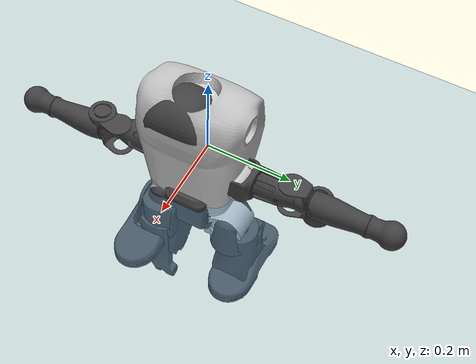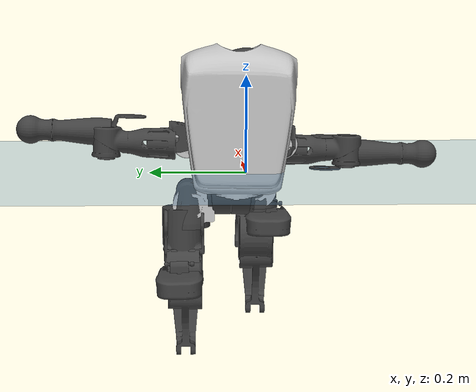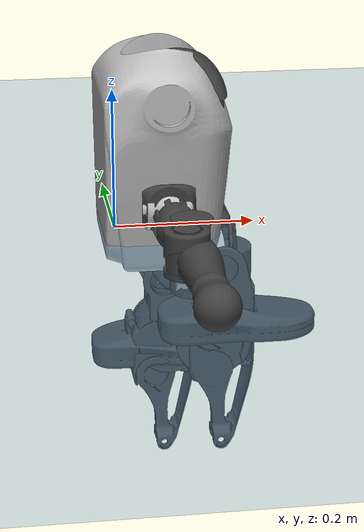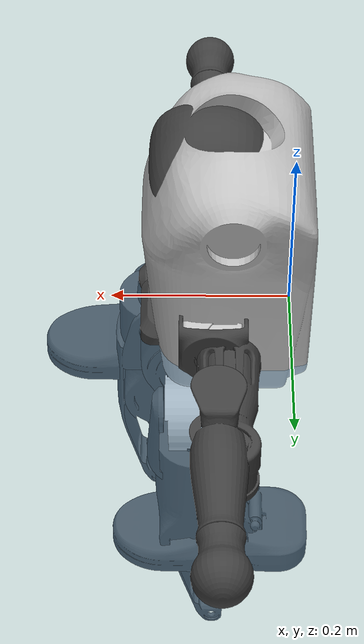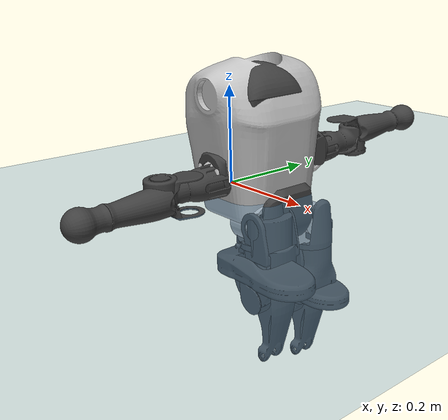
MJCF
<mujoco model="T1">
  <compiler angle="radian" assetdir="assets" balanceinertia="true" inertiafromgeom="false"/>

  <option timestep="0.005" density="1.2" viscosity="2e-05"/>

  <size nkey="1"/>

  <visual>
    <quality shadowsize="8192"/>
    <map shadowclip="0.5"/>
  </visual>

  <default>
    <default class="/">
      <joint armature="0.01" damping="0.01" frictionloss="0.1"/>
      <geom contype="0" conaffinity="0" group="1" solref="-1000 -80"/>
      <site size="0.01 0.005 0.005" group="5"/>
      <general forcelimited="true" biastype="affine" gainprm="25" biasprm="0 -25 -0.6"/>
      <default class="t1">
        <geom rgba="0.25 0.25 0.25 1"/>
        <default class="visual">
          <geom type="mesh" group="2"/>
        </default>
        <default class="collision">
          <geom group="3"/>
        </default>
        <default class="foot">
          <geom size="0.1115 0.05 0.015" type="box" condim="6" group="4" priority="1" solimp="0.015 1 0.015"/>
        </default>
        <default class="reward_collision_sphere">
          <geom group="5" rgba="1 0 0 1"/>
        </default>
      </default>
    </default>
  </default>

  <asset>
    <texture type="skybox" colorspace="auto" name="//unnamed_texture_0" builtin="gradient" rgb1="0.95 0.95 0.95" rgb2="0.95 0.95 0.95" width="100" height="600"/>
    <texture type="2d" colorspace="auto" name="texplane" builtin="checker" rgb1="0.345 0.575 0.748" rgb2="0.345 0.575 0.748" markrgb="1 1 1" width="512" height="512"/>
    <material name="MatPlane" class="/" texture="texplane" texuniform="true" texrepeat="2 2" specular="0.9"/>
    <mesh name="Trunk" class="/" file="Trunk.stl"/>
    <mesh name="H1" class="/" file="H1.stl"/>
    <mesh name="H2" class="/" file="H2.stl"/>
    <mesh name="AL1" class="/" file="AL1.stl"/>
    <mesh name="AL2" class="/" file="AL2.stl"/>
    <mesh name="AL3" class="/" file="AL3.stl"/>
    <mesh name="left_hand_link" class="/" file="left_hand_link.stl"/>
    <mesh name="AR1" class="/" file="AR1.stl"/>
    <mesh name="AR2" class="/" file="AR2.stl"/>
    <mesh name="AR3" class="/" file="AR3.stl"/>
    <mesh name="right_hand_link" class="/" file="right_hand_link.stl"/>
    <mesh name="Waist" class="/" file="Waist.stl"/>
    <mesh name="Hip_Pitch_Left" class="/" file="Hip_Pitch_Left.stl"/>
    <mesh name="Hip_Roll_Left" class="/" file="Hip_Roll_Left.stl"/>
    <mesh name="Hip_Yaw_Left" class="/" file="Hip_Yaw_Left.stl"/>
    <mesh name="Shank_Left" class="/" file="Shank_Left.stl"/>
    <mesh name="Ankle_Cross_Left" class="/" file="Ankle_Cross_Left.stl"/>
    <mesh name="left_foot_link" class="/" file="left_foot_link.stl"/>
    <mesh name="Hip_Pitch_Right" class="/" file="Hip_Pitch_Right.stl"/>
    <mesh name="Hip_Roll_Right" class="/" file="Hip_Roll_Right.stl"/>
    <mesh name="Hip_Yaw_Right" class="/" file="Hip_Yaw_Right.stl"/>
    <mesh name="Shank_Right" class="/" file="Shank_Right.stl"/>
    <mesh name="Ankle_Cross_Right" class="/" file="Ankle_Cross_Right.stl"/>
    <mesh name="right_foot_link" class="/" file="right_foot_link.stl"/>
  </asset>

  <worldbody>
    <geom name="floor" class="/" size="100 100 0.125" type="plane" group="0" material="MatPlane"/>
    <light name="toplight_shadow" class="/" pos="0 0 5" dir="0.0990148 0.0990148 -0.990148" type="directional" ambient="0.04 0.04 0.04" diffuse="0.55 0.55 0.55" specular="0.12 0.12 0.12"/>
    <light name="toplight_fill" class="/" pos="0 0 5" dir="0.0990148 0.0990148 -0.990148" type="directional" castshadow="false" ambient="0.04 0.04 0.04" diffuse="0.3 0.3 0.3" specular="0.08 0.08 0.08"/>
    <body name="trunk" childclass="t1" pos="0.0106367 0.016613 -0.0149039" quat="0.999964 0.00834739 -0.000775371 -0.00154818">
      <inertial pos="0.0697083 -0.00964631 0.017567" quat="0.999771 -0.00479746 -0.0185938 0.00939736" mass="3.86346" diaginertia="0.162578 0.0069563 4.33938e-05"/>
      <joint name="//unnamed_joint_0" type="free" armature="0" damping="0" frictionloss="0"/>
      <geom name="//unnamed_geom_1" class="visual" rgba="0.76 0.76 0.76 1" mesh="Trunk"/>
      <geom name="//unnamed_geom_2" class="collision" size="0.0529089 0.0705452 0.105818" pos="0.0731483 0 0.0318669" type="box"/>
      <geom name="//unnamed_geom_3" class="reward_collision_sphere" size="0.0811269" pos="0.0731483 0 0.0265558"/>
      <geom name="//unnamed_geom_4" class="reward_collision_sphere" size="0.0105818" pos="0.0731483 0.053691 0"/>
      <geom name="//unnamed_geom_5" class="reward_collision_sphere" size="0.0105818" pos="0.0731483 -0.053691 0"/>
      <geom name="//unnamed_geom_6" class="reward_collision_sphere" size="0.0105818" pos="0.0731483 0.0675875 0.0478004"/>
      <geom name="//unnamed_geom_7" class="reward_collision_sphere" size="0.0105818" pos="0.0731483 -0.0675875 0.0478004"/>
      <site name="imu" pos="-0.0745283 0.0452247 -0.0439835" size="0.00705452"/>
      <camera name="track" pos="0 -1.26332 0" quat="0.707107 0.707107 0 0" mode="trackcom"/>
      <camera name="ego_camera" pos="0.148735 0 0.111534" quat="-0.5 -0.5 0.5 0.5"/>
      <body name="H1" pos="0.0591387 -0.017187 0.0792847" quat="1 -0.000102605 -0.000426228 -0.000187102">
        <inertial pos="0.0149054 -0.0118514 0.000233693" quat="0.750839 0.0254712 -0.0876569 0.654147" mass="0.19698" diaginertia="0.000690777 2.14503e-05 2.23353e-07"/>
        <joint name="AAHead_yaw" pos="0 0 0" axis="-0.012478 0.037183 0.999231" range="-1.3474 1.88079" armature="0.0132177" damping="0.0379502" frictionloss="0.000874765"/>
        <geom name="//unnamed_geom_8" class="visual" mesh="H1"/>
        <body name="H2" pos="0.0053628 -0.000137132 0.00296648" quat="0.999999 -0.000986577 -0.00102261 0.000153499">
          <inertial pos="0.00104495 0.00424208 0.0283558" quat="0.988405 0.100695 -0.0302441 -0.109553" mass="0.287362" diaginertia="0.00759328 0.000202036 2.13125e-06"/>
          <joint name="Head_pitch" pos="0 0 0" axis="-0.0317648 -0.999408 0.0131959" range="-1.11481 0.235092" armature="0.0142153" damping="0.0206331" frictionloss="0.101755"/>
          <geom name="//unnamed_geom_9" class="visual" mesh="H2"/>
          <geom name="//unnamed_geom_10" class="collision" size="0.0564361" pos="0.0121914 0 0.0292113"/>
          <geom name="//unnamed_geom_11" class="reward_collision_sphere" size="0.0634907" pos="0.0243828 0 0.0265558"/>
        </body>
      </body>
      <body name="AL1" pos="0.0770498 0.059866 0.0665923" quat="0.999998 2.18202e-05 0.00195707 0.000161628">
        <inertial pos="0.0115631 0.0308273 -0.00846315" quat="0.435806 0.533005 -0.478622 0.544885" mass="0.214458" diaginertia="0.0036928 0.000116334 3.23866e-07"/>
        <joint name="Left_Shoulder_Pitch" pos="0 0 0" axis="-0.0148538 0.997894 0.063149" stiffness="0.0222349" range="-3.28737 1.0012" armature="0.00803912" damping="0" frictionloss="0.0954556"/>
        <geom name="//unnamed_geom_12" class="visual" rgba="0.76 0.76 0.76 1" mesh="AL1"/>
        <body name="AL2" pos="-0.00158579 0.0299868 0.0115866" quat="0.999999 4.45752e-05 -0.000589416 -0.00162163">
          <inertial pos="0.00122417 0.0367127 0.00506026" quat="0.484949 0.522364 -0.493313 0.4986" mass="0.0591402" diaginertia="0.00125225 3.48188e-05 2.82384e-07"/>
          <joint name="Left_Shoulder_Roll" pos="0 0 0" axis="-0.999389 0.0250281 0.0243983" stiffness="0.0328284" range="-1.34796 1.47606" armature="0.006573" damping="0.0333404" frictionloss="0.0926862"/>
          <geom name="//unnamed_geom_13" class="visual" mesh="AL2"/>
          <body name="AL3" pos="-0.0159854 0.0413657 -0.0121106" quat="0.999972 0.00576607 -0.00364328 0.00322843">
            <inertial pos="0.0183631 0.0486901 0.00207817" quat="0.707223 0.706073 0.0344458 0.0105015" mass="0.299148" diaginertia="0.0300938 0.00160569 7.81445e-07"/>
            <joint name="Left_Elbow_Pitch" pos="0 0 0" axis="-0.000984632 -0.999624 0.0274145" stiffness="0.0320553" range="-2.20824 2.29872" armature="0.0111475" damping="0.0210837" frictionloss="0.0969847"/>
            <geom name="//unnamed_geom_14" class="visual" mesh="AL3"/>
            <geom name="//unnamed_geom_15" class="collision" size="0.0211636 0.0529089" pos="0 0.0315829 0" quat="0.707105 0.707108 0 0" type="cylinder"/>
            <geom name="//unnamed_geom_16" class="reward_collision_sphere" size="0.0253963"/>
            <body name="left_hand_link" pos="0.0123255 0.0924708 0.0195478" quat="0.999962 0.0030614 -0.00598202 0.00548667">
              <inertial pos="0.0036253 0.0831444 -0.0140241" quat="0.676047 0.735483 -0.00918149 0.0440574" mass="0.155357" diaginertia="0.0214765 0.00105976 4.19474e-07"/>
              <joint name="Left_Elbow_Yaw" pos="0 0 0" axis="-0.0331909 0.00743866 0.999421" range="-2.30248 0.208389" armature="0.00906854" damping="0" frictionloss="0.0827245"/>
              <geom name="//unnamed_geom_17" class="visual" mesh="left_hand_link"/>
              <geom name="//unnamed_geom_18" class="collision" size="0.0211636 0.061727" pos="0 0.0821156 0" quat="0.707105 0.707108 0 0" type="cylinder"/>
              <geom name="//unnamed_geom_19" class="reward_collision_sphere" size="0.0352726"/>
              <geom name="//unnamed_geom_20" class="reward_collision_sphere" size="0.0246908" pos="0 0.0694825 0"/>
              <geom name="//unnamed_geom_21" class="reward_collision_sphere" size="0.0246908" pos="0 0.135807 0"/>
            </body>
          </body>
        </body>
      </body>
      <body name="AR1" pos="0.0574182 -0.0486246 0.0701938" quat="0.999992 0.00306606 0.00242053 -0.00047826">
        <inertial pos="-0.00456494 -0.0120099 -0.0182773" quat="0.48458 0.521548 -0.49324 0.499885" mass="0.218187" diaginertia="0.00413591 0.000184816 4.47601e-07"/>
        <joint name="Right_Shoulder_Pitch" pos="0 0 0" axis="-0.0179685 -0.996066 0.0867784" stiffness="0.0163805" range="-1.53214 3.40995" armature="0.00353121" damping="0" frictionloss="0.0162698"/>
        <geom name="//unnamed_geom_22" class="visual" rgba="0.76 0.76 0.76 1" mesh="AR1"/>
        <body name="AR2" pos="-0.00074958 -0.0171466 0.00411396" quat="0.999979 -0.00374574 -0.00517185 -0.00107448">
          <inertial pos="0.0176166 -0.0273725 0.0131922" quat="0.489885 0.488888 -0.559127 0.456485" mass="0.0382016" diaginertia="0.000781116 2.76639e-05 2.18647e-07"/>
          <joint name="Right_Shoulder_Roll" pos="0 0 0" axis="-0.998192 -0.0275351 -0.0534258" stiffness="0.0471847" range="-1.80884 1.66136" armature="0.0125711" damping="0.0206558" frictionloss="0.0944137"/>
          <geom name="//unnamed_geom_23" class="visual" mesh="AR2"/>
          <body name="AR3" pos="0.00650963 -0.0216677 -0.0173892" quat="0.999969 0.00242335 0.00606951 0.00450195">
            <inertial pos="-0.0196018 -0.0593121 -0.0168811" quat="0.706031 0.708014 0.00665503 -0.0138351" mass="0.419102" diaginertia="0.0500223 0.0014866 1.09119e-06"/>
            <joint name="Right_Elbow_Pitch" pos="0 0 0" axis="-0.00220895 0.999997 0.00102394" stiffness="0.0591137" range="-2.11481 2.33838" armature="0.00676362" damping="0.025531" frictionloss="0.00093975"/>
            <geom name="//unnamed_geom_24" class="visual" mesh="AR3"/>
            <geom name="//unnamed_geom_25" class="collision" size="0.0211636 0.0529089" pos="0 -0.0315829 0" quat="0.707105 0.707108 0 0" type="cylinder"/>
            <geom name="//unnamed_geom_26" class="reward_collision_sphere" size="0.0253963"/>
            <body name="right_hand_link" pos="0.0133995 -0.0976444 -0.00697818" quat="0.999999 -0.000680347 0.00150028 0.000251379">
              <inertial pos="0.00597292 -0.0782588 0.00826303" quat="0.694827 0.719062 0.0120429 0.00454078" mass="0.105241" diaginertia="0.0168275 0.000636144 2.48794e-07"/>
              <joint name="Right_Elbow_Yaw" pos="0 0 0" axis="0.00635211 -0.0948412 0.995472" stiffness="0.0177069" range="0.186309 2.45602" armature="0.011651" damping="0.0232197" frictionloss="0.0257879"/>
              <geom name="//unnamed_geom_27" class="visual" mesh="right_hand_link"/>
              <geom name="//unnamed_geom_28" class="collision" size="0.0211636 0.061727" pos="0 -0.0821156 0" quat="0.707105 0.707108 0 0" type="cylinder"/>
              <geom name="//unnamed_geom_29" class="reward_collision_sphere" size="0.0352726"/>
              <geom name="//unnamed_geom_30" class="reward_collision_sphere" size="0.0246908" pos="0 -0.0694825 0"/>
              <geom name="//unnamed_geom_31" class="reward_collision_sphere" size="0.0246908" pos="0 -0.135807 0"/>
            </body>
          </body>
        </body>
      </body>
      <body name="Waist" pos="0.0959572 0.0112476 -0.0312505" quat="0.999958 -0.00767502 0.00486473 0.00140921">
        <inertial pos="0.0205366 -0.0149254 0.01653" quat="0.991973 -0.0116083 -0.110022 0.0612402" mass="1.22941" diaginertia="0.0154276 0.000663684 7.71975e-06"/>
        <joint name="Waist" pos="0 0 0" axis="-0.0657013 -0.0144684 0.997734" range="-1.59971 1.39942" armature="0.00669976" damping="0" frictionloss="0.0593756"/>
        <geom name="//unnamed_geom_32" class="visual" mesh="Waist"/>
        <body name="Hip_Pitch_Left" pos="-0.00309486 0.082057 -0.0165274" quat="0.999991 -0.00393589 0.00141999 0.000618822">
          <inertial pos="-0.0169704 -0.00937776 -0.00761112" quat="0.95418 0.294482 0.0531049 -0.000597693" mass="0.278965" diaginertia="0.00495399 9.92715e-05 1.54553e-06"/>
          <joint name="Left_Hip_Pitch" pos="0 0 0" axis="-0.0642395 0.997061 0.0417393" range="-2.01668 1.72624" armature="0.00260311" damping="0.0158611" frictionloss="0.0533791"/>
          <geom name="//unnamed_geom_33" class="visual" rgba="0.76 0.76 0.76 1" mesh="Hip_Pitch_Left"/>
          <body name="Hip_Roll_Left" pos="0.00833675 0.0115662 0.0066567" quat="0.999999 -2.48894e-06 -0.00114088 0.000777314">
            <inertial pos="0.000896254 0.0190737 -0.00324607" quat="0.707085 -0.00599584 -0.00599621 0.707078" mass="0.165421" diaginertia="0.00673202 0.000222459 6.08308e-07"/>
            <joint name="Left_Hip_Roll" pos="0 0 0" axis="-0.998327 0.0488292 0.0309604" range="-1.41343 -0.043614" armature="0.00436399" damping="0.0981052" frictionloss="0.0167895"/>
            <geom name="//unnamed_geom_34" class="visual" mesh="Hip_Roll_Left"/>
            <geom name="//unnamed_geom_35" class="reward_collision_sphere" size="0.0387998"/>
            <body name="Hip_Yaw_Left" pos="-0.00710853 0.0118656 -0.0327238" quat="0.999979 -0.00179976 -0.00622116 -0.000746075">
              <inertial pos="-0.0164637 -0.00907641 -0.00915868" quat="0.68457 -0.0550183 0.00926076 0.726809" mass="0.707064" diaginertia="0.0836037 0.00322193 4.29316e-06"/>
              <joint name="Left_Hip_Yaw" pos="0 0 0" axis="-0.00286001 0.0110012 -0.999935" stiffness="0.0855118" range="-0.62253 1.13692" armature="0.00854914" damping="0" frictionloss="0.0602401"/>
              <geom name="//unnamed_geom_36" class="visual" mesh="Hip_Yaw_Left"/>
              <geom name="//unnamed_geom_37" class="collision" size="0.0352726 0.0564361" type="cylinder"/>
              <body name="Shank_Left" pos="-0.0225756 -0.00330208 -0.0339283" quat="1 0.00044679 0.000433214 0.000162551">
                <inertial pos="0.00792283 0.00059186 -0.0392418" quat="0.995444 -0.0626683 -0.0310951 0.0647792" mass="0.572308" diaginertia="0.0693163 0.00386372 2.6392e-06"/>
                <joint name="Left_Knee_Pitch" pos="0 0 0" axis="0.0116775 0.99846 0.054238" range="0.0249729 2.61294" armature="0.00131257" damping="0.0801897" frictionloss="0.0879857"/>
                <geom name="//unnamed_geom_38" class="visual" mesh="Shank_Left"/>
                <geom name="//unnamed_geom_39" class="collision" size="0.0352726 0.0529089" pos="0 0 -0.0318669" type="cylinder"/>
                <geom name="//unnamed_geom_40" class="reward_collision_sphere" size="0.0458544"/>
                <body name="Ankle_Cross_Left" pos="-0.0154955 -0.00372209 -0.0943441" quat="0.99998 0.00247252 -0.00505654 -0.00275069">
                  <inertial pos="0.0152591 -0.00736226 -0.0148109" quat="0.459449 0.554355 0.536311 0.440418" mass="0.0226411" diaginertia="8.71855e-05 2.45562e-06 1.24721e-08"/>
                  <joint name="Left_Ankle_Pitch" pos="0 0 0" axis="-0.00848192 0.999933 -0.00783853" stiffness="0.0790948" range="-0.880784 0.330756" armature="0" damping="0" frictionloss="0.0532509"/>
                  <geom name="//unnamed_geom_41" class="visual" mesh="Ankle_Cross_Left"/>
                  <body name="left_foot_link" pos="0.00977523 0.014233 -0.0176294" quat="0.999951 -0.0077472 0.00494927 -0.00378021">
                    <inertial pos="0.0149004 0.0124934 0.00428838" quat="0.0282178 0.676394 -0.03677 0.73508" mass="0.173812" diaginertia="0.00639031 0.000222077 1.94916e-06"/>
                    <joint name="Left_Ankle_Roll" pos="0 0 0" axis="-0.995244 -0.0632948 -0.0740516" range="-0.63338 0.164908" armature="0.0065832" damping="0.0791948" frictionloss="0.0999676"/>
                    <geom name="//unnamed_geom_42" class="visual" mesh="left_foot_link"/>
                    <geom name="left_foot" class="foot" size="0.0421548 0.0544759 0.0116042" pos="0.0121914 0 -0.00398336"/>
                    <geom name="//unnamed_geom_44" class="reward_collision_sphere" size="0.0366835" pos="0.0121914 0 -0.00398336"/>
                    <geom name="//unnamed_geom_45" class="reward_collision_sphere" size="0.0211636" pos="0.115818 -0.0145282 -0.00398336"/>
                    <geom name="//unnamed_geom_46" class="reward_collision_sphere" size="0.0211636" pos="-0.0853397 -0.0145282 -0.00398336"/>
                    <site name="left_foot" class="foot" pos="0.0121914 0 -0.00398336" size="0.00705452"/>
                  </body>
                </body>
              </body>
            </body>
          </body>
        </body>
        <body name="Hip_Pitch_Right" pos="0.00815143 -0.0541117 0.0192731" quat="0.999996 0.000793402 -0.0010678 0.00267653">
          <inertial pos="0.0189876 0.0217749 0.00512813" quat="0.962179 -0.271726 0.0166949 -0.00992124" mass="0.347918" diaginertia="0.00402599 0.000116074 1.62871e-06"/>
          <joint name="Right_Hip_Pitch" pos="0 0 0" axis="0.0347677 -0.999093 -0.0245918" stiffness="0.0510236" range="-1.4007 2.07529" armature="0.0108903" damping="0.0922511" frictionloss="0.0325732"/>
          <geom name="//unnamed_geom_47" class="visual" rgba="0.76 0.76 0.76 1" mesh="Hip_Pitch_Right"/>
          <body name="Hip_Roll_Right" pos="0.0137516 -0.00303574 0.0138764" quat="0.999978 0.00626791 -0.00193408 -0.000512609">
            <inertial pos="0.0157679 -0.010099 -0.0286233" quat="0.747414 -0.0256415 -0.0578472 0.661339" mass="0.126683" diaginertia="0.00392421 0.0001848 7.79946e-07"/>
            <joint name="Right_Hip_Roll" pos="0 0 0" axis="-0.999061 0.0385754 -0.0197484" range="-0.057761 1.46506" armature="0.00946506" damping="0" frictionloss="0.0202873"/>
            <geom name="//unnamed_geom_48" class="visual" mesh="Hip_Roll_Right"/>
            <geom name="//unnamed_geom_49" class="reward_collision_sphere" size="0.0387998"/>
            <body name="Hip_Yaw_Right" pos="0.0189594 0.000147079 -0.0115991" quat="0.999998 0.000130413 -0.00169633 -0.00134134">
              <inertial pos="-0.00196435 0.00849062 -0.0370109" quat="0.714527 -0.0112792 -0.0283371 0.698943" mass="0.868281" diaginertia="0.056923 0.00303428 2.78774e-06"/>
              <joint name="Right_Hip_Yaw" pos="0 0 0" axis="-0.000387715 -0.0292023 -0.999573" stiffness="0.0417405" range="-0.939422 1.05073" armature="0.00446911" damping="0" frictionloss="0.105669"/>
              <geom name="//unnamed_geom_50" class="visual" mesh="Hip_Yaw_Right"/>
              <geom name="//unnamed_geom_51" class="collision" size="0.0352726 0.0564361" type="cylinder"/>
              <body name="Shank_Right" pos="-0.000514435 -0.000954117 -0.0210333" quat="0.999987 -0.004833 -0.0012362 -0.000852882">
                <inertial pos="-0.0111768 0.0160685 -0.0301019" quat="0.995242 -0.0649725 -0.0593265 -0.0418521" mass="0.526434" diaginertia="0.11311 0.00374173 3.33525e-06"/>
                <joint name="Right_Knee_Pitch" pos="0 0 0" axis="-0.022046 -0.999752 0.00312123" range="-1.99075 -0.0898606" armature="0.0099328" damping="0.00404871" frictionloss="0.0943501"/>
                <geom name="//unnamed_geom_52" class="visual" mesh="Shank_Right"/>
                <geom name="//unnamed_geom_53" class="collision" size="0.0352726 0.0529089" pos="0 0 -0.0318669" type="cylinder"/>
                <geom name="//unnamed_geom_54" class="reward_collision_sphere" size="0.0458544"/>
                <body name="Ankle_Cross_Right" pos="0.00806274 -0.00824303 -0.06365" quat="0.999999 0.000906053 0.000394918 0.000707359">
                  <inertial pos="-0.0014042 -0.0122348 -0.00107853" quat="0.443634 0.547848 0.555184 0.441387" mass="0.0281527" diaginertia="5.76003e-05 2.84484e-06 1.10504e-08"/>
                  <joint name="Right_Ankle_Pitch" pos="0 0 0" axis="0.00689383 -0.996368 0.084874" stiffness="0.077973" range="-0.618174 1.17155" armature="0.00644905" damping="0" frictionloss="0.0605876"/>
                  <geom name="//unnamed_geom_55" class="visual" mesh="Ankle_Cross_Right"/>
                  <body name="right_foot_link" pos="0.00282739 -0.0164041 -0.00753147" quat="0.999998 -0.000350399 0.00153119 -0.000810616">
                    <inertial pos="0.000635043 -0.0164426 0.0168505" quat="-0.0675748 0.626538 0.0461199 0.775085" mass="0.343378" diaginertia="0.00836592 0.000289015 4.44702e-06"/>
                    <joint name="Right_Ankle_Roll" pos="0 0 0" axis="-0.998714 -0.0481588 0.0158405" range="-0.124217 0.0786125" armature="0.0135647" damping="0.10332" frictionloss="0.0192986"/>
                    <geom name="//unnamed_geom_56" class="visual" mesh="right_foot_link"/>
                    <geom name="right_foot" class="foot" size="0.0768289 0.0563739 0.00401069" pos="0.0121914 0 -0.00398336"/>
                    <geom name="//unnamed_geom_58" class="reward_collision_sphere" size="0.0282181"/>
                    <geom name="//unnamed_geom_59" class="reward_collision_sphere" size="0.0211636" pos="0.0121914 0 -0.00398336"/>
                    <geom name="//unnamed_geom_60" class="reward_collision_sphere" size="0.0211636" pos="0.115818 0.0145282 -0.00398336"/>
                    <geom name="//unnamed_geom_61" class="reward_collision_sphere" size="0.0211636" pos="-0.0853397 0.0145282 -0.00398336"/>
                    <site name="right_foot" class="foot" pos="0.0121914 0 -0.00398336" size="0.00705452"/>
                  </body>
                </body>
              </body>
            </body>
          </body>
        </body>
      </body>
    </body>
  </worldbody>

  <contact>
    <pair class="/" geom1="floor" geom2="left_foot" name="//unnamed_contact_0"/>
    <pair class="/" geom1="floor" geom2="right_foot" name="//unnamed_contact_1"/>
  </contact>

  <actuator>
    <general name="AAHead_yaw" class="/" joint="AAHead_yaw" forcerange="-5.4891 5.4891" gainprm="22.7428" biasprm="0 -22.7428 -0.290958"/>
    <general name="Head_pitch" class="/" joint="Head_pitch" forcerange="-4.15438 4.15438" gainprm="22.7428" biasprm="0 -22.7428 -0.290958"/>
    <general name="Left_Shoulder_Pitch" class="/" joint="Left_Shoulder_Pitch" forcerange="-22.0698 22.0698" gainprm="22.7428" biasprm="0 -22.7428 -0.290958"/>
    <general name="Left_Shoulder_Roll" class="/" joint="Left_Shoulder_Roll" forcerange="-20.7693 20.7693" gainprm="22.7428" biasprm="0 -22.7428 -0.290958"/>
    <general name="Left_Elbow_Pitch" class="/" joint="Left_Elbow_Pitch" forcerange="-6.06986 6.06986" gainprm="22.7428" biasprm="0 -22.7428 -0.290958"/>
    <general name="Left_Elbow_Yaw" class="/" joint="Left_Elbow_Yaw" forcerange="-14.4116 14.4116" gainprm="22.7428" biasprm="0 -22.7428 -0.290958"/>
    <general name="Right_Shoulder_Pitch" class="/" joint="Right_Shoulder_Pitch" forcerange="-16.4355 16.4355" gainprm="22.7428" biasprm="0 -22.7428 -0.290958"/>
    <general name="Right_Shoulder_Roll" class="/" joint="Right_Shoulder_Roll" forcerange="-5.7753 5.7753" gainprm="22.7428" biasprm="0 -22.7428 -0.290958"/>
    <general name="Right_Elbow_Pitch" class="/" joint="Right_Elbow_Pitch" forcerange="-9.1286 9.1286" gainprm="22.7428" biasprm="0 -22.7428 -0.290958"/>
    <general name="Right_Elbow_Yaw" class="/" joint="Right_Elbow_Yaw" forcerange="-16.8108 16.8108" gainprm="22.7428" biasprm="0 -22.7428 -0.290958"/>
    <general name="Waist" class="/" joint="Waist" forcerange="-33.8969 33.8969" gainprm="22.7428" biasprm="0 -22.7428 -0.290958"/>
    <general name="Left_Hip_Pitch" class="/" joint="Left_Hip_Pitch" forcerange="-24.2094 24.2094" gainprm="22.7428" biasprm="0 -22.7428 -0.290958"/>
    <general name="Left_Hip_Roll" class="/" joint="Left_Hip_Roll" forcerange="-12.8762 12.8762" gainprm="22.7428" biasprm="0 -22.7428 -0.290958"/>
    <general name="Left_Hip_Yaw" class="/" joint="Left_Hip_Yaw" forcerange="-31.3789 31.3789" gainprm="22.7428" biasprm="0 -22.7428 -0.290958"/>
    <general name="Left_Knee_Pitch" class="/" joint="Left_Knee_Pitch" forcerange="-47.7227 47.7227" gainprm="22.7428" biasprm="0 -22.7428 -0.290958"/>
    <general name="Left_Ankle_Pitch" class="/" joint="Left_Ankle_Pitch" forcerange="-13.6136 13.6136" gainprm="22.7428" biasprm="0 -22.7428 -0.290958"/>
    <general name="Left_Ankle_Roll" class="/" joint="Left_Ankle_Roll" forcerange="-6.71123 6.71123" gainprm="22.7428" biasprm="0 -22.7428 -0.290958"/>
    <general name="Right_Hip_Pitch" class="/" joint="Right_Hip_Pitch" forcerange="-11.3962 11.3962" gainprm="22.7428" biasprm="0 -22.7428 -0.290958"/>
    <general name="Right_Hip_Roll" class="/" joint="Right_Hip_Roll" forcerange="-5.85886 5.85886" gainprm="22.7428" biasprm="0 -22.7428 -0.290958"/>
    <general name="Right_Hip_Yaw" class="/" joint="Right_Hip_Yaw" forcerange="-23.7022 23.7022" gainprm="22.7428" biasprm="0 -22.7428 -0.290958"/>
    <general name="Right_Knee_Pitch" class="/" joint="Right_Knee_Pitch" forcerange="-22.7155 22.7155" gainprm="22.7428" biasprm="0 -22.7428 -0.290958"/>
    <general name="Right_Ankle_Pitch" class="/" joint="Right_Ankle_Pitch" forcerange="-24.173 24.173" gainprm="22.7428" biasprm="0 -22.7428 -0.290958"/>
    <general name="Right_Ankle_Roll" class="/" joint="Right_Ankle_Roll" forcerange="-4.35139 4.35139" gainprm="22.7428" biasprm="0 -22.7428 -0.290958"/>
  </actuator>

  <sensor>
    <gyro site="imu" name="imu_angular_velocity"/>
    <velocimeter site="imu" name="imu_linear_velocity"/>
    <framelinvel objtype="site" objname="left_foot" name="left_foot_global_linear_velocity"/>
    <framelinvel objtype="site" objname="right_foot" name="right_foot_global_linear_velocity"/>
  </sensor>

  <keyframe>
    <key name="home" qpos="0 0 0.6385 1 0 0 0 0 0 0 1.4 0 -0.4 0 -1.4 0 0.4 0 -0.4 0 0 0.8 -0.4 0 0.4 0 0 -0.8 0.4 0"/>
  </keyframe>
</mujoco>
